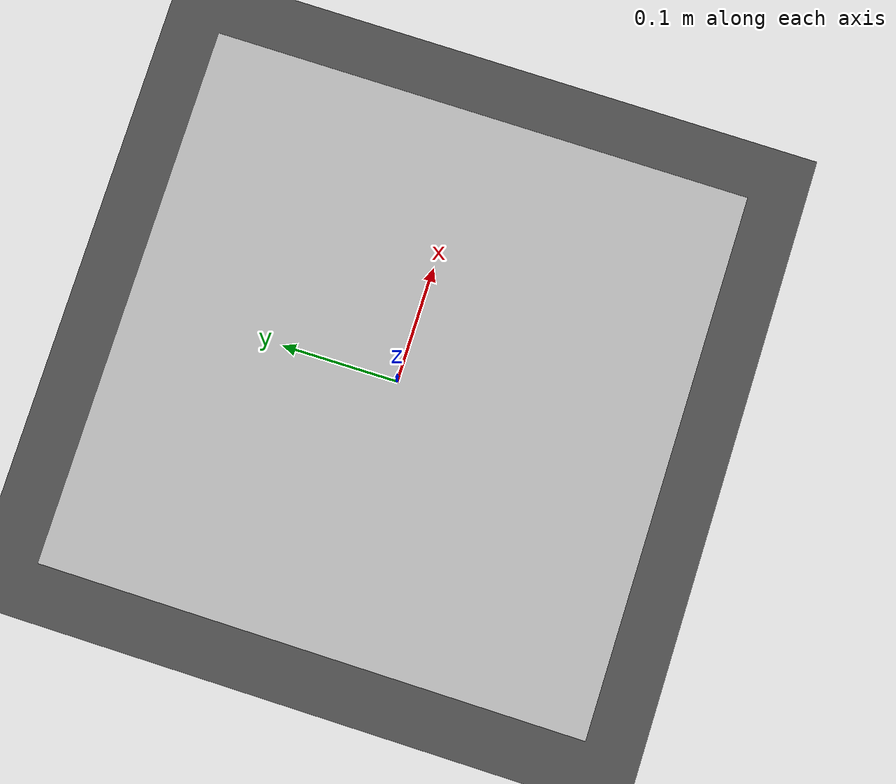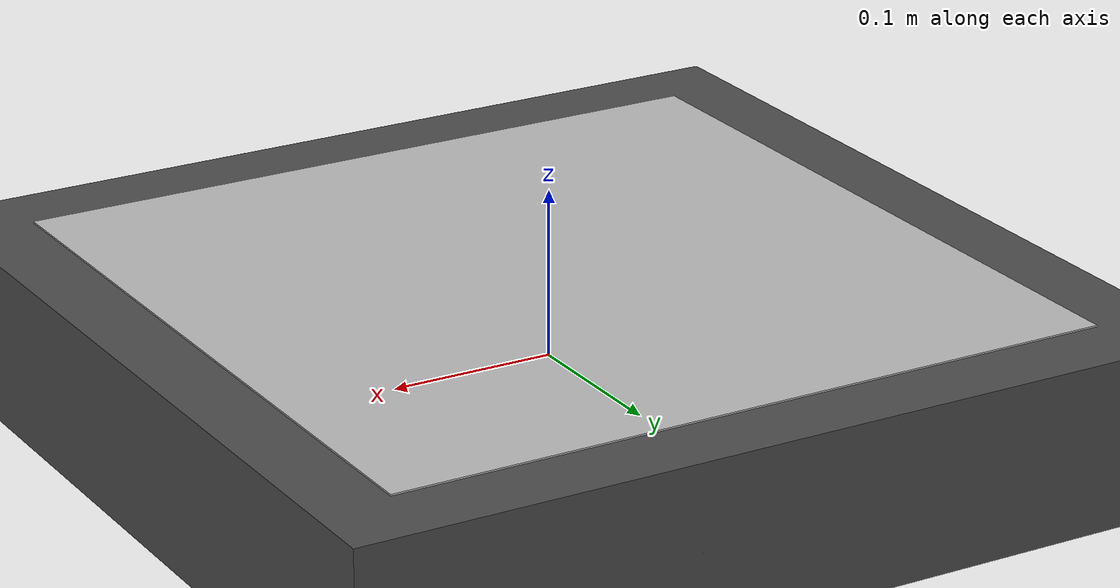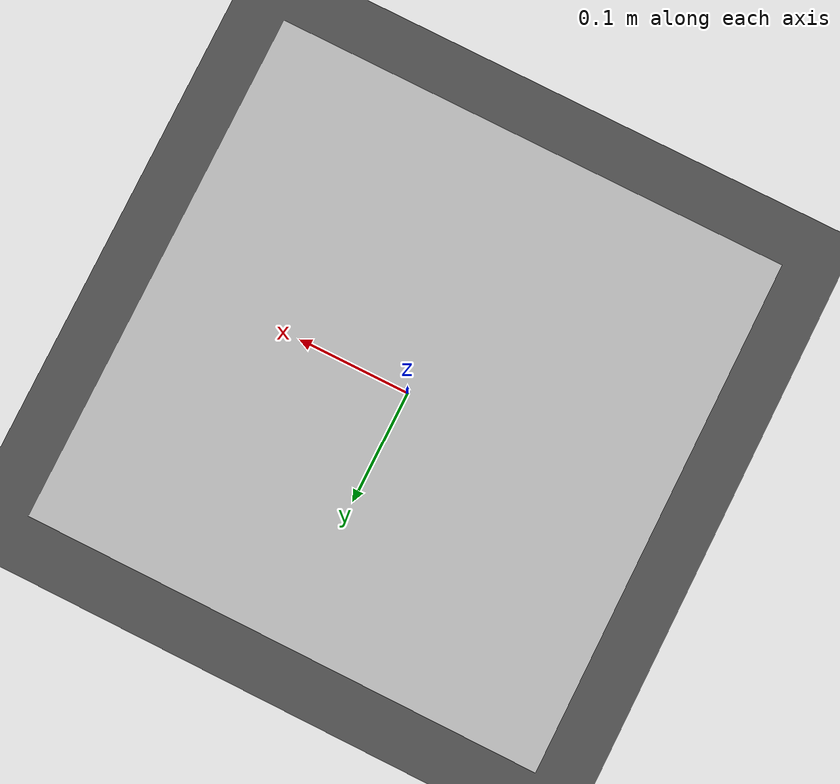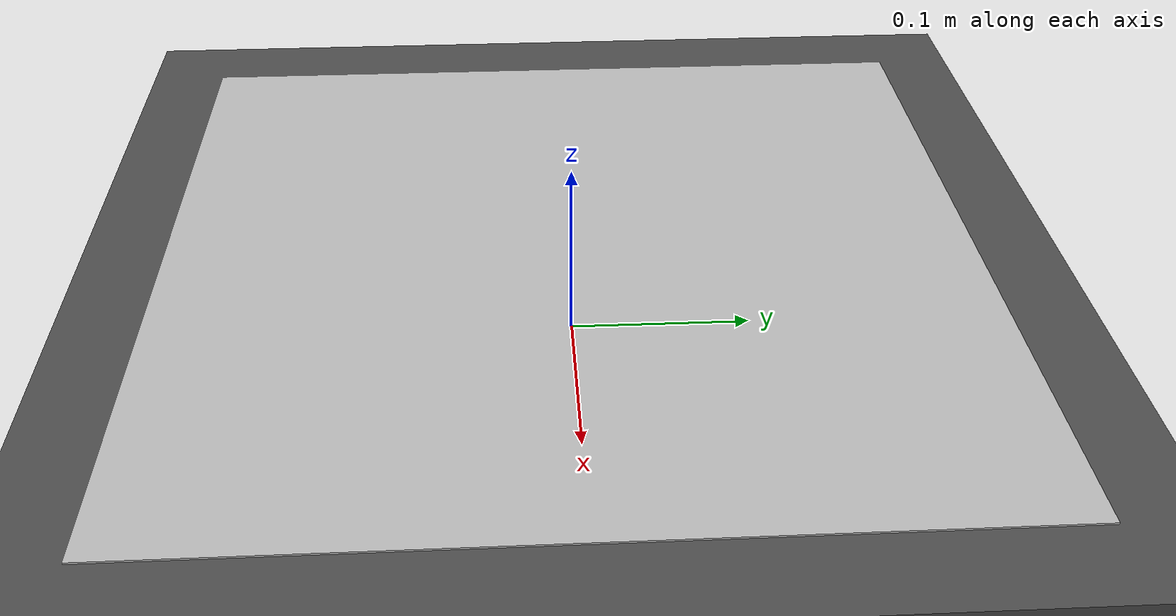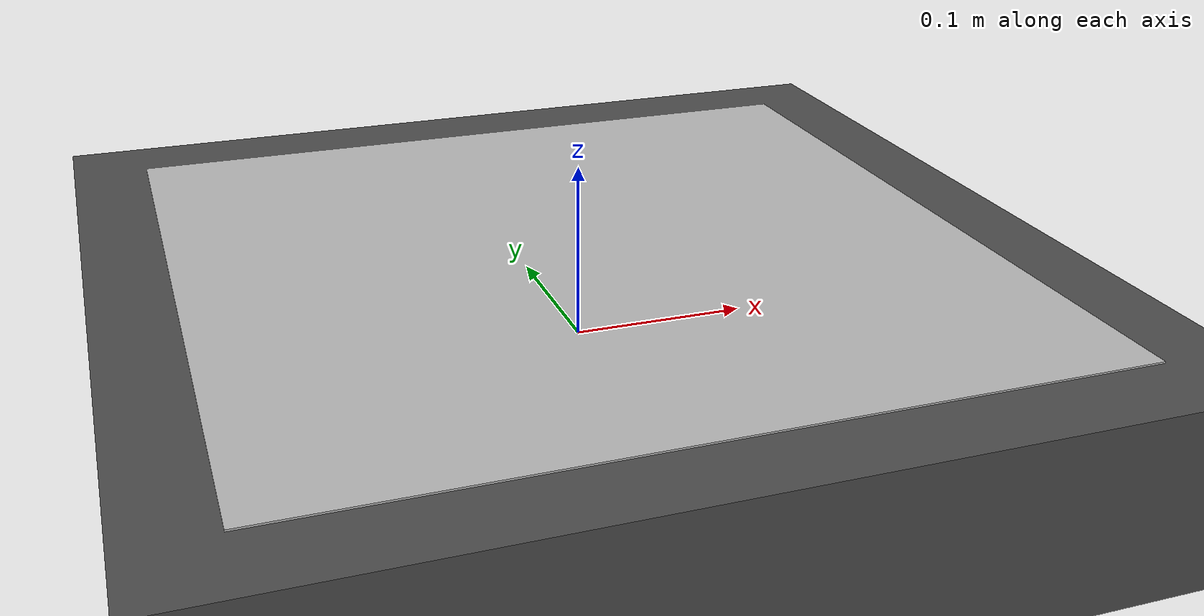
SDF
<sdf version="1.6">
 <world name="default">
  <model name="aruco_2_1">
   <static>1</static>
   <link name="aruco_2_1_link">
    <visual name="visual_marker_2_4">
     <pose>0 0 0 0 -0 1.5708</pose>
     <cast_shadows>0</cast_shadows>
     <geometry><box><size>0.44 0.44 0.001</size></box></geometry>
     <material>
      <script>
       <uri>model://aruco_2_4/materials/scripts</uri>
       <uri>model://aruco_2_4/materials/textures</uri>
       <name>aruco/marker_2_4</name>
      </script>
     </material>
    </visual>
   </link>
   <pose>0 0 0.050603 0 -0 0</pose>
  </model>
  <model name="aruco_2_1">
   <static>1</static>
   <link name="aruco_2_1_link">
    <visual name="visual_marker_2_4">
     <pose>0 0 0 0 -0 1.5708</pose>
     <cast_shadows>0</cast_shadows>
     <geometry><box><size>0.44 0.44 0.001</size></box></geometry>
     <material>
      <script>
       <uri>model://aruco_2_4/materials/scripts</uri>
       <uri>model://aruco_2_4/materials/textures</uri>
       <name>aruco/marker_2_4</name>
      </script>
     </material>
    </visual>
   </link>
   <pose>0 0 0.050603 0 -0 0</pose>
  </model>
  <model name="aruco_2_1">
   <static>1</static>
   <link name="aruco_2_1_link">
    <visual name="visual_marker_2_4">
     <pose>0 0 0 0 -0 1.5708</pose>
     <cast_shadows>0</cast_shadows>
     <geometry><box><size>0.44 0.44 0.001</size></box></geometry>
     <material>
      <script>
       <uri>model://aruco_2_4/materials/scripts</uri>
       <uri>model://aruco_2_4/materials/textures</uri>
       <name>aruco/marker_2_4</name>
      </script>
     </material>
    </visual>
   </link>
   <pose>0 0 0.050603 0 -0 0</pose>
  </model>
  <model name="aruco_2_1">
   <static>1</static>
   <link name="aruco_2_1_link">
    <visual name="visual_marker_2_4">
     <pose>0 0 0 0 -0 1.5708</pose>
     <cast_shadows>0</cast_shadows>
     <geometry><box><size>0.44 0.44 0.001</size></box></geometry>
     <material>
      <script>
       <uri>model://aruco_2_4/materials/scripts</uri>
       <uri>model://aruco_2_4/materials/textures</uri>
       <name>aruco/marker_2_4</name>
      </script>
     </material>
    </visual>
   </link>
   <pose>0 0 0.050603 0 -0 0</pose>
  </model>
  <light name="sun" type="directional">
   <pose>0 0 10 0 -0 0</pose>
   <diffuse>0.8 0.8 0.8 1</diffuse>
   <specular>0.2 0.2 0.2 1</specular>
   <attenuation>
    <range>1000</range>
    <constant>0.9</constant>
    <linear>0.01</linear>
    <quadratic>0.001</quadratic>
   </attenuation>
   <direction>-0.5 0.1 -0.9</direction>
  </light>
  <scene>
   <ambient>0.8 0.8 0.8 1</ambient>
   <background>0.8 0.9 1 1</background>
   <shadows>0</shadows>
   <grid>0</grid>
   <origin_visual>0</origin_visual>
  </scene>
  <physics name="default_physics" default="0" type="ode">
   <ode>
    <solver>
     <type>quick</type>
     <iters>10</iters>
     <sor>1.3</sor>
     <use_dynamic_moi_rescaling>0</use_dynamic_moi_rescaling>
    </solver>
    <constraints>
     <cfm>0</cfm>
     <erp>0.2</erp>
     <contact_max_correcting_vel>100</contact_max_correcting_vel>
     <contact_surface_layer>0.001</contact_surface_layer>
    </constraints>
   </ode>
   <max_step_size>0.004</max_step_size>
   <real_time_factor>1</real_time_factor>
   <real_time_update_rate>250</real_time_update_rate>
  </physics>
  <gravity>0 0 -9.8066</gravity>
  <magnetic_field>6e-06 2.3e-05 -4.2e-05</magnetic_field>
  <atmosphere type="adiabatic"/>
  <spherical_coordinates>
   <surface_model>EARTH_WGS84</surface_model>
   <latitude_deg>0</latitude_deg>
   <longitude_deg>0</longitude_deg>
   <elevation>0</elevation>
   <heading_deg>0</heading_deg>
  </spherical_coordinates>
  <model name="ground_plane">
   <static>1</static>
   <link name="link">
    <collision name="collision">
     <geometry><plane><normal>0 0 1</normal><size>100 100</size></plane></geometry>
     <surface>
      <contact><collide_bitmask>65535</collide_bitmask></contact>
      <friction><ode><mu>100</mu><mu2>50</mu2></ode></friction>
     </surface>
    </collision>
    <visual name="visual">
     <cast_shadows>0</cast_shadows>
     <geometry><plane><normal>0 0 1</normal><size>100 100</size></plane></geometry>
     <material>
      <script><uri>file://media/materials/scripts/gazebo.material</uri><name>Gazebo/Grey</name></script>
     </material>
    </visual>
   </link>
   <pose>-7.67838 4.10635 0 0 -0 0</pose>
  </model>
  <model name="asphalt_plane">
   <static>1</static>
   <link name="link">
    <collision name="collision"><geometry><box><size>200 200 0.1</size></box></geometry></collision>
    <visual name="visual">
     <cast_shadows>0</cast_shadows>
     <geometry><box><size>200 200 0.1</size></box></geometry>
     <material>
      <script>
       <uri>model://asphalt_plane/materials/scripts</uri>
       <uri>model://asphalt_plane/materials/textures</uri>
       <name>vrc/asphalt</name>
      </script>
     </material>
    </visual>
   </link>
   <pose>-1.23641 -5.53608 0 0 -0 0</pose>
  </model>
 </world>
</sdf>
